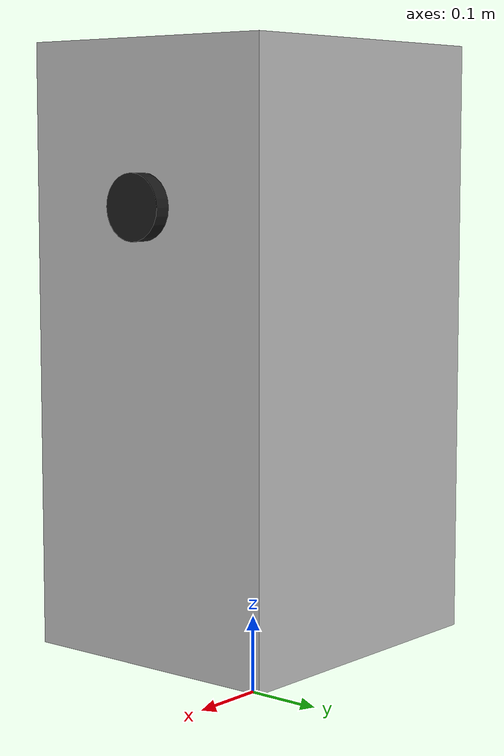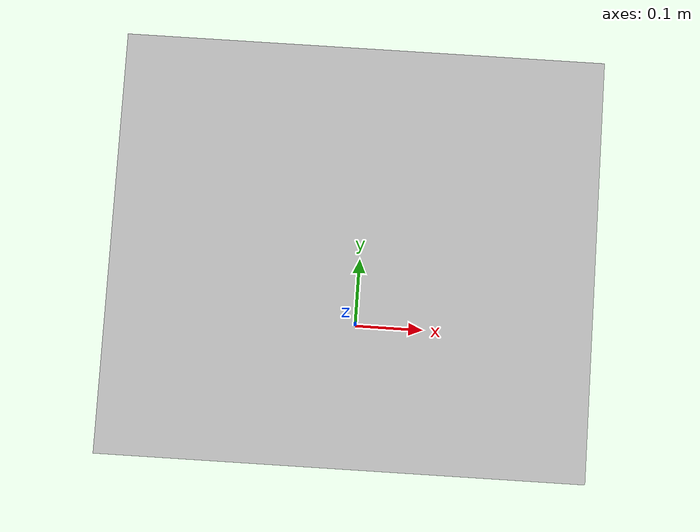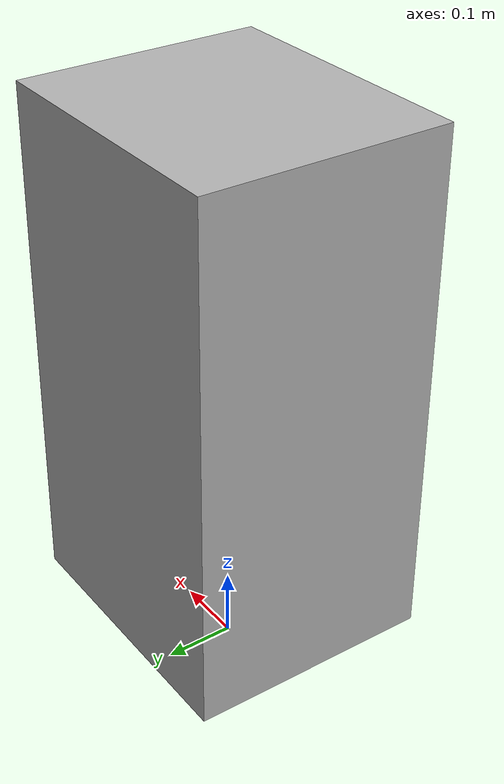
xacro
<?xml version="1.0"?>
<robot xmlns:xacro="http://www.ros.org/wiki/xacro" name="patrol_robot_vertical">

  <xacro:property name="base_length"          value="0.400" />
  <xacro:property name="base_width"           value="0.350" />
  <xacro:property name="base_box_height"      value="0.745" />
  <xacro:property name="base_ground_clearance" value="0.0785" />

  <xacro:property name="lidar_offset_x" value="0.190" />
  <xacro:property name="lidar_offset_y" value="0.000" />
  <xacro:property name="lidar_offset_z" value="0.550" />

  <!-- 修复前后翻转：在竖装90°的基础上绕Z再转180°，使模型前方与现实一致 -->
  <xacro:property name="lidar_rpy" value="0.0 1.5708 3.14159" />

  <!-- ==================== 坐标系根节点 ==================== -->
  <link name="base_footprint"/>

  <joint name="base_joint" type="fixed">
    <parent link="base_footprint"/>
    <child  link="base_link"/>
    <origin xyz="0 0 ${base_ground_clearance}" rpy="0 0 0"/>
  </joint>

  <!-- ==================== 车身 ==================== -->
  <link name="base_link">
    <visual>
      <geometry>
        <box size="${base_length} ${base_width} ${base_box_height}"/>
      </geometry>
      <origin xyz="0 0 ${base_box_height/2}" rpy="0 0 0"/>
      <material name="light_grey"><color rgba="0.7 0.7 0.7 1"/></material>
    </visual>
  </link>

  <!-- ==================== 雷达安装支架 ==================== -->
  <link name="unilidar_link">
    <visual>
      <geometry>
        <cylinder length="0.06" radius="0.04"/>
      </geometry>
      <material name="black"><color rgba="0.1 0.1 0.1 1"/></material>
    </visual>
  </link>

  <joint name="unilidar_joint" type="fixed">
    <parent link="base_link"/>
    <child  link="unilidar_link"/>
    <origin xyz="${lidar_offset_x} ${lidar_offset_y} ${lidar_offset_z}"
            rpy="${lidar_rpy}"/>
  </joint>

  <!-- ==================== 激光扫描虚拟坐标系 ==================== -->
  <link name="unilidar_laser"/>

  <joint name="unilidar_laser_joint" type="fixed">
    <parent link="unilidar_link"/>
    <child  link="unilidar_laser"/>
    <origin xyz="0 0 0" rpy="0 0 0"/>
  </joint>

  <!-- ==================== IMU 坐标系 ==================== -->
  <link name="unilidar_imu"/>

  <joint name="unilidar_imu_joint" type="fixed">
    <parent link="unilidar_link"/>
    <child  link="unilidar_imu"/>
    <origin xyz="0 0 0" rpy="0 0 0"/>
  </joint>

</robot>
